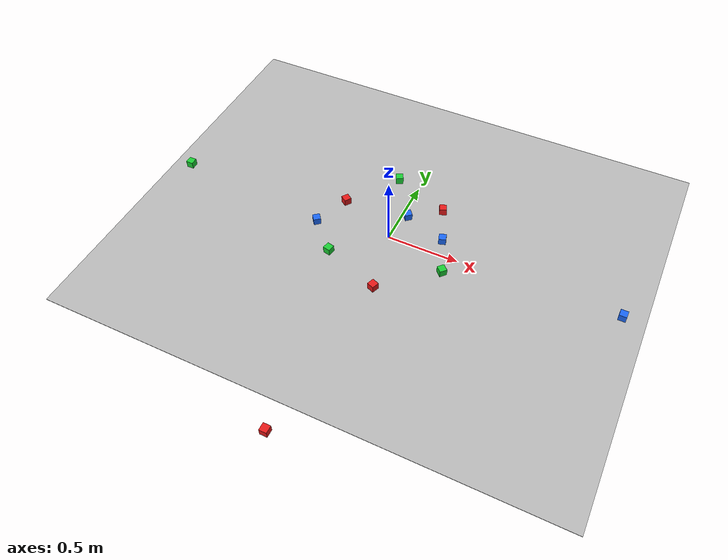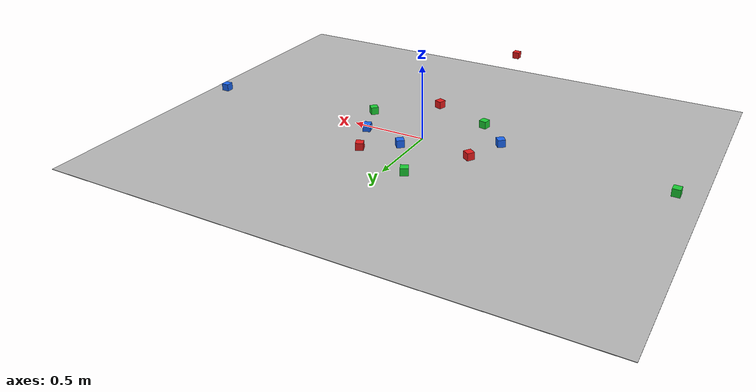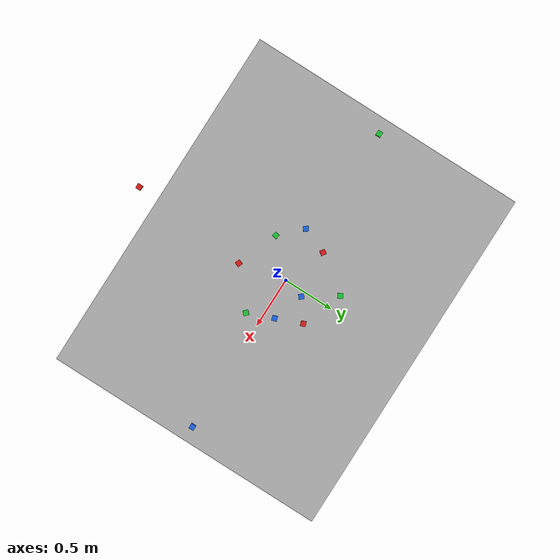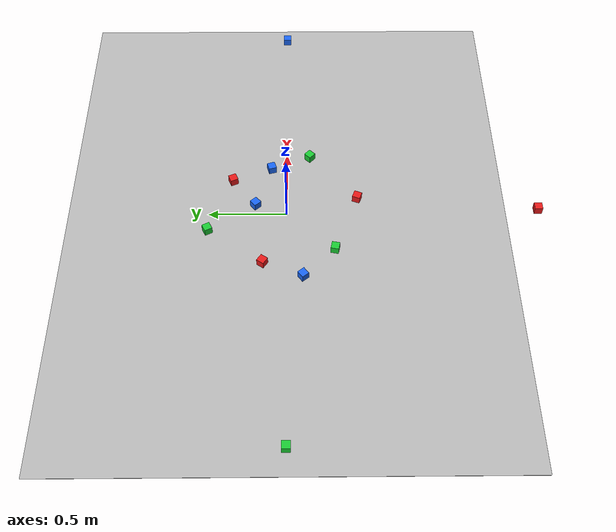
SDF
<?xml version="1.0" ?>
<sdf version="1.6">
  <world name="autostack_arena">

    <!-- Sun Light -->
    <include>
      <uri>model://sun</uri>
    </include>

    <!-- AutoStack Ground Arena -->
    <include>
      <uri>model://arena_ground</uri>
      <pose>0 0 0 0 0 0</pose>
    </include>

    <!-- Physics Setup -->
    <physics type="ode">
      <max_step_size>0.001</max_step_size>
      <real_time_factor>1.0</real_time_factor>
      <real_time_update_rate>1000</real_time_update_rate>
      <gravity>0 0 -9.81</gravity>
    </physics>

    <!-- PRE-SPAWNED CUBES RANDOMIZED IN THE CENTER ARENA (r < 0.6m) -->
    <!-- Red Cubes in Center Arena -->
    <include>
      <name>cube_red_1</name>
      <uri>model://cube_red</uri>
      <pose>0.25 0.35 0.025 0 0 0.4</pose>
    </include>
    <include>
      <name>cube_red_2</name>
      <uri>model://cube_red</uri>
      <pose>-0.40 0.15 0.025 0 0 -0.6</pose>
    </include>
    <include>
      <name>cube_red_3</name>
      <uri>model://cube_red</uri>
      <pose>0.10 -0.45 0.025 0 0 1.2</pose>
    </include>

    <!-- Green Cubes in Center Arena -->
    <include>
      <name>cube_green_1</name>
      <uri>model://cube_green</uri>
      <pose>-0.30 -0.30 0.025 0 0 -0.2</pose>
    </include>
    <include>
      <name>cube_green_2</name>
      <uri>model://cube_green</uri>
      <pose>0.45 -0.15 0.025 0 0 0.8</pose>
    </include>
    <include>
      <name>cube_green_3</name>
      <uri>model://cube_green</uri>
      <pose>-0.15 0.50 0.025 0 0 -1.1</pose>
    </include>

    <!-- Blue Cubes in Center Arena -->
    <include>
      <name>cube_blue_1</name>
      <uri>model://cube_blue</uri>
      <pose>0.35 0.10 0.025 0 0 0.3</pose>
    </include>
    <include>
      <name>cube_blue_2</name>
      <uri>model://cube_blue</uri>
      <pose>-0.50 -0.10 0.025 0 0 -0.9</pose>
    </include>
    <include>
      <name>cube_blue_3</name>
      <uri>model://cube_blue</uri>
      <pose>0.05 0.20 0.025 0 0 0.7</pose>
    </include>

    <!-- Additional Cubes on Stacking Pads -->
    <include>
      <name>cube_red_pad</name>
      <uri>model://cube_red</uri>
      <pose>0.0 -1.6 0.025 0 0 0</pose>
    </include>
    <include>
      <name>cube_green_pad</name>
      <uri>model://cube_green</uri>
      <pose>-1.6 0.0 0.025 0 0 0</pose>
    </include>
    <include>
      <name>cube_blue_pad</name>
      <uri>model://cube_blue</uri>
      <pose>1.6 0.0 0.025 0 0 0</pose>
    </include>

    <!-- Camera Viewpoint Scene Setup -->
    <gui fullscreen="0">
      <camera name="user_camera">
        <pose>0 -3.0 2.5 0 0.7 1.5708</pose>
      </camera>
    </gui>

  </world>
</sdf>

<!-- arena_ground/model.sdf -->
<sdf version="1.6">
  <model name="arena_ground">
    <static>true</static>
    <link name="link">
      <collision name="collision">
        <geometry>
          <plane>
            <normal>0 0 1</normal>
            <size>3.5 2.8</size>
          </plane>
        </geometry>
        <surface>
          <friction>
            <ode>
              <mu>100</mu>
              <mu2>50</mu2>
            </ode>
          </friction>
        </surface>
      </collision>
      <visual name="visual">
        <cast_shadows>false</cast_shadows>
        <geometry>
          <plane>
            <normal>0 0 1</normal>
            <size>3.5 2.8</size>
          </plane>
        </geometry>
        <material>
          <script>
            <uri>model://arena_ground/materials/scripts</uri>
            <uri>model://arena_ground/materials/textures</uri>
            <name>AutoStackArena/Banner</name>
          </script>
        </material>
      </visual>
    </link>
  </model>
</sdf>

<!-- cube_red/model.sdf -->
<sdf version="1.6">
  <model name="cube_red">
    <link name="link">
      <pose>0 0 0.025 0 0 0</pose>
      <inertial>
        <mass>0.03</mass>
        <inertia>
          <ixx>0.0000125</ixx>
          <ixy>0</ixy>
          <ixz>0</ixz>
          <iyy>0.0000125</iyy>
          <iyz>0</iyz>
          <izz>0.0000125</izz>
        </inertia>
      </inertial>
      <collision name="collision">
        <geometry>
          <box>
            <size>0.05 0.05 0.05</size>
          </box>
        </geometry>
        <surface>
          <friction>
            <ode>
              <mu>2.0</mu>
              <mu2>2.0</mu2>
              <fdir1>0 0 0</fdir1>
              <slip1>0.0</slip1>
              <slip2>0.0</slip2>
            </ode>
          </friction>
          <contact>
            <ode>
              <kp>1000000.0</kp>
              <kd>100.0</kd>
              <max_vel>0.01</max_vel>
              <min_depth>0.001</min_depth>
            </ode>
          </contact>
        </surface>
      </collision>
      <visual name="visual">
        <geometry>
          <box>
            <size>0.05 0.05 0.05</size>
          </box>
        </geometry>
        <material>
          <ambient>0.9 0.1 0.1 1</ambient>
          <diffuse>0.9 0.1 0.1 1</diffuse>
          <specular>0.5 0.5 0.5 1</specular>
        </material>
      </visual>
    </link>
  </model>
</sdf>

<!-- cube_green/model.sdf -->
<sdf version="1.6">
  <model name="cube_green">
    <link name="link">
      <pose>0 0 0.025 0 0 0</pose>
      <inertial>
        <mass>0.03</mass>
        <inertia>
          <ixx>0.0000125</ixx>
          <ixy>0</ixy>
          <ixz>0</ixz>
          <iyy>0.0000125</iyy>
          <iyz>0</iyz>
          <izz>0.0000125</izz>
        </inertia>
      </inertial>
      <collision name="collision">
        <geometry>
          <box>
            <size>0.05 0.05 0.05</size>
          </box>
        </geometry>
        <surface>
          <friction>
            <ode>
              <mu>2.0</mu>
              <mu2>2.0</mu2>
              <fdir1>0 0 0</fdir1>
              <slip1>0.0</slip1>
              <slip2>0.0</slip2>
            </ode>
          </friction>
          <contact>
            <ode>
              <kp>1000000.0</kp>
              <kd>100.0</kd>
              <max_vel>0.01</max_vel>
              <min_depth>0.001</min_depth>
            </ode>
          </contact>
        </surface>
      </collision>
      <visual name="visual">
        <geometry>
          <box>
            <size>0.05 0.05 0.05</size>
          </box>
        </geometry>
        <material>
          <ambient>0.1 0.8 0.2 1</ambient>
          <diffuse>0.1 0.8 0.2 1</diffuse>
          <specular>0.5 0.5 0.5 1</specular>
        </material>
      </visual>
    </link>
  </model>
</sdf>

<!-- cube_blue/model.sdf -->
<sdf version="1.6">
  <model name="cube_blue">
    <link name="link">
      <pose>0 0 0.025 0 0 0</pose>
      <inertial>
        <mass>0.03</mass>
        <inertia>
          <ixx>0.0000125</ixx>
          <ixy>0</ixy>
          <ixz>0</ixz>
          <iyy>0.0000125</iyy>
          <iyz>0</iyz>
          <izz>0.0000125</izz>
        </inertia>
      </inertial>
      <collision name="collision">
        <geometry>
          <box>
            <size>0.05 0.05 0.05</size>
          </box>
        </geometry>
        <surface>
          <friction>
            <ode>
              <mu>2.0</mu>
              <mu2>2.0</mu2>
              <fdir1>0 0 0</fdir1>
              <slip1>0.0</slip1>
              <slip2>0.0</slip2>
            </ode>
          </friction>
          <contact>
            <ode>
              <kp>1000000.0</kp>
              <kd>100.0</kd>
              <max_vel>0.01</max_vel>
              <min_depth>0.001</min_depth>
            </ode>
          </contact>
        </surface>
      </collision>
      <visual name="visual">
        <geometry>
          <box>
            <size>0.05 0.05 0.05</size>
          </box>
        </geometry>
        <material>
          <ambient>0.1 0.4 0.95 1</ambient>
          <diffuse>0.1 0.4 0.95 1</diffuse>
          <specular>0.5 0.5 0.5 1</specular>
        </material>
      </visual>
    </link>
  </model>
</sdf>
